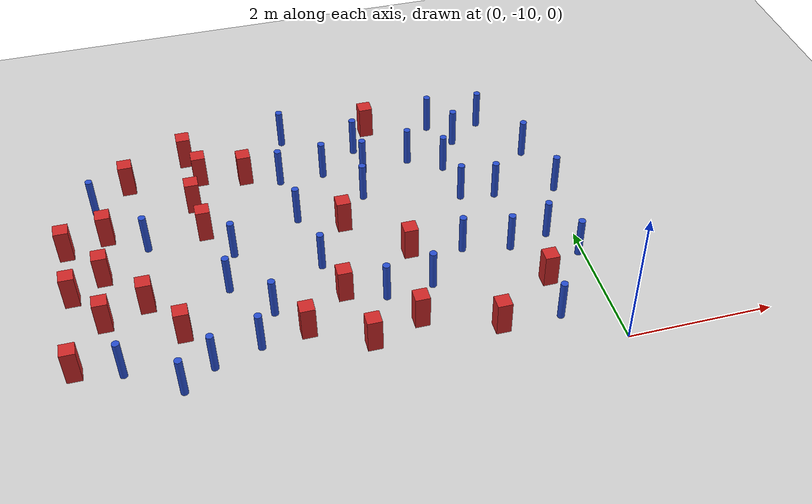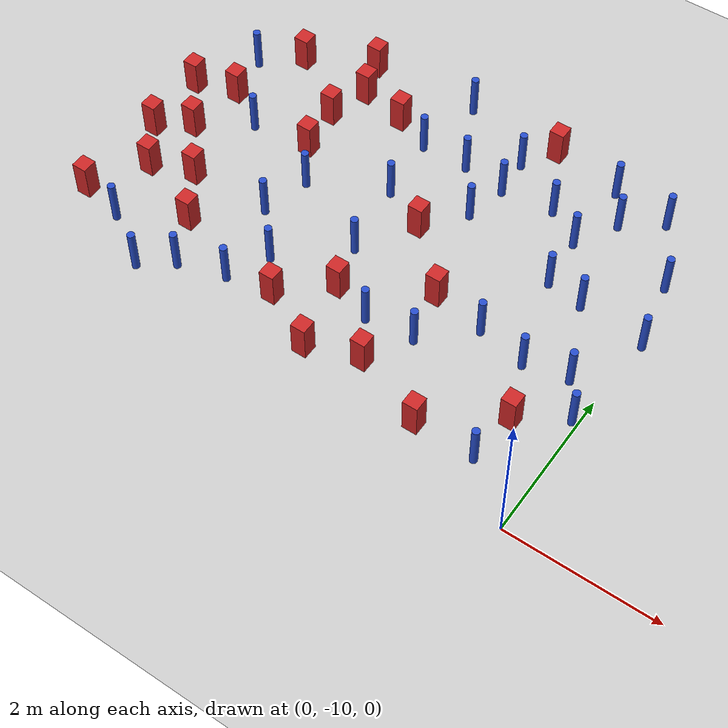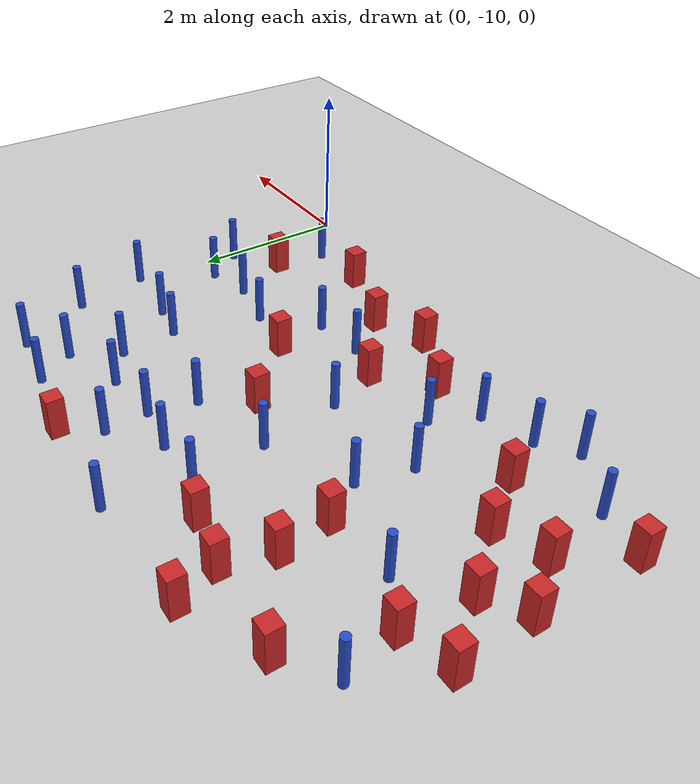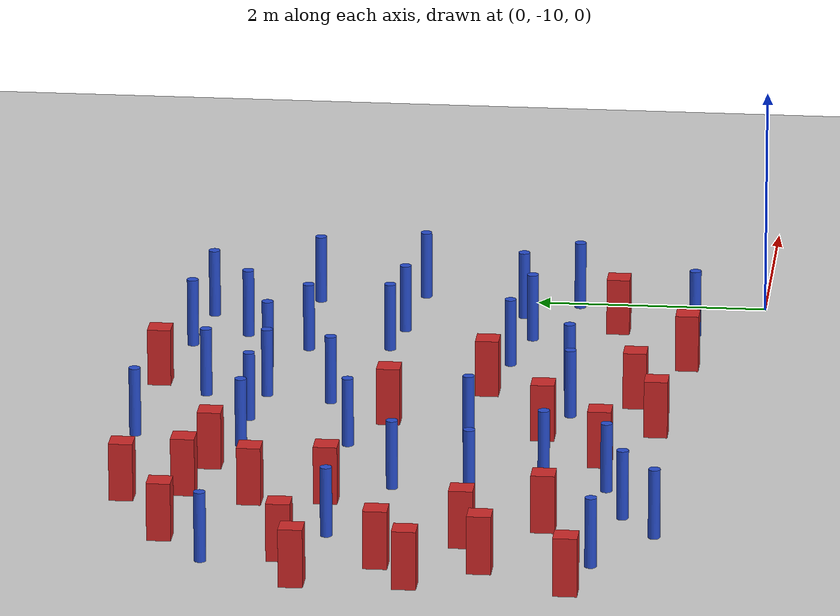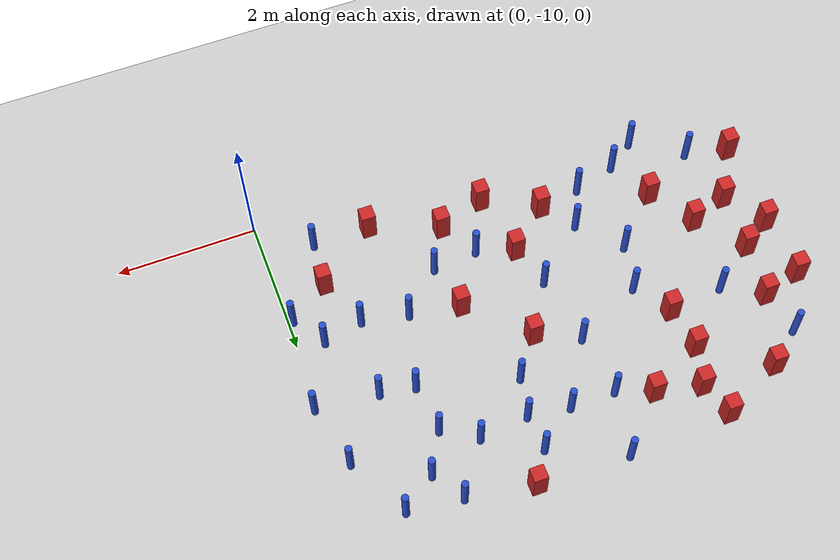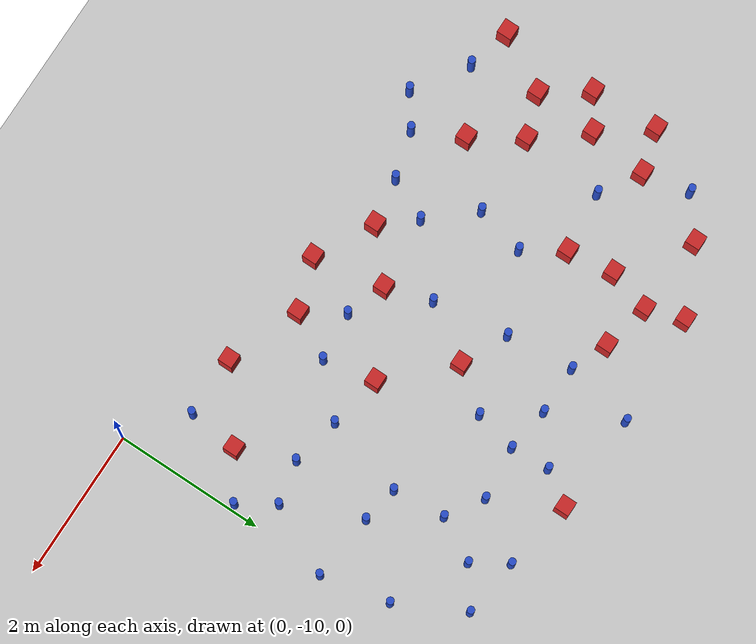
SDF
<sdf version="1.6">
 <world name="default">
  <model name="ground_plane">
   <static>1</static>
   <link name="link">
    <collision name="collision">
     <geometry><plane><normal>0 0 1</normal><size>100 100</size></plane></geometry>
     <surface><friction><ode><mu>100</mu><mu2>50</mu2></ode></friction></surface>
    </collision>
    <visual name="visual">
     <cast_shadows>0</cast_shadows>
     <geometry><plane><normal>0 0 1</normal><size>100 100</size></plane></geometry>
     <material>
      <ambient>1.0 1.0 1.0 1.0</ambient>
      <diffuse>0.8 0.8 0.8 1.0</diffuse>
      <specular>0.01 0.01 0.01 1.000000</specular>
     </material>
    </visual>
   </link>
  </model>
  <model name="square_post_obstacle0">
   <static>true</static>
   <pose>-5.92552398057 -7.88743212732 8.22691968438e-08 7.2212513382e-06 -7.54495500217e-07 2.29674213826e-05</pose>
   <link name="link">
    <pose>0 0 0.25 0 -0 0</pose>
    <inertial>
     <mass>100</mass>
     <inertia>
      <ixx>0.166667</ixx>
      <ixy>0</ixy>
      <ixz>0</ixz>
      <iyy>0.166667</iyy>
      <iyz>0</iyz>
      <izz>0.166667</izz>
     </inertia>
    </inertial>
    <collision name="collision"><geometry><box><size>.2 .2 .5</size></box></geometry></collision>
    <visual name="visual">
     <geometry><box><size>.2 .2 .5</size></box></geometry>
     <material>
      <script><name>Gazebo/Red</name><uri>file://media/materials/scripts/gazebo.material</uri></script>
     </material>
    </visual>
   </link>
  </model>
  <model name="pole_obstacle3">
   <static>true</static>
   <pose>-6.3174377324 -8.97854769486 2.88873142074e-08 -9.9053668967e-09 4.60219948993e-07 -1.20965994957e-07</pose>
   <link name="link">
    <pose>0 0 0.3 0 -0 0</pose>
    <inertial>
     <mass>1</mass>
     <inertia><ixx>0.145833</ixx><ixy>0</ixy><ixz>0</ixz><iyy>0.145833</iyy><iyz>0</iyz><izz>0.125</izz></inertia>
    </inertial>
    <collision name="collision">
     <geometry><cylinder><radius>0.05</radius><length>.6</length></cylinder></geometry>
    </collision>
    <visual name="visual">
     <geometry><cylinder><radius>0.05</radius><length>.6</length></cylinder></geometry>
     <material>
      <script><name>Gazebo/Blue</name><uri>file://media/materials/scripts/gazebo.material</uri></script>
     </material>
    </visual>
   </link>
  </model>
  <model name="square_post_obstacle5">
   <static>true</static>
   <pose>-2.51365523219 -9.04669653167 8.22691968438e-08 7.22125133819e-06 -7.54495500217e-07 2.29674213826e-05</pose>
   <link name="link">
    <pose>0 0 0.25 0 -0 0</pose>
    <inertial>
     <mass>100</mass>
     <inertia>
      <ixx>0.166667</ixx>
      <ixy>0</ixy>
      <ixz>0</ixz>
      <iyy>0.166667</iyy>
      <iyz>0</iyz>
      <izz>0.166667</izz>
     </inertia>
    </inertial>
    <collision name="collision"><geometry><box><size>.2 .2 .5</size></box></geometry></collision>
    <visual name="visual">
     <geometry><box><size>.2 .2 .5</size></box></geometry>
     <material>
      <script><name>Gazebo/Red</name><uri>file://media/materials/scripts/gazebo.material</uri></script>
     </material>
    </visual>
   </link>
  </model>
  <model name="pole_obstacle5">
   <static>true</static>
   <pose>-0.822284344405 -6.90274951284 2.88873142074e-08 -9.90536689661e-09 4.60219948993e-07 -1.20965994957e-07</pose>
   <link name="link">
    <pose>0 0 0.3 0 -0 0</pose>
    <inertial>
     <mass>1</mass>
     <inertia><ixx>0.145833</ixx><ixy>0</ixy><ixz>0</ixz><iyy>0.145833</iyy><iyz>0</iyz><izz>0.125</izz></inertia>
    </inertial>
    <collision name="collision">
     <geometry><cylinder><radius>0.05</radius><length>.6</length></cylinder></geometry>
    </collision>
    <visual name="visual">
     <geometry><cylinder><radius>0.05</radius><length>.6</length></cylinder></geometry>
     <material>
      <script><name>Gazebo/Blue</name><uri>file://media/materials/scripts/gazebo.material</uri></script>
     </material>
    </visual>
   </link>
  </model>
  <model name="pole_obstacle11">
   <static>true</static>
   <pose>-1.0749578244 -5.55144896337 2.88873142074e-08 -9.90536689852e-09 4.60219948989e-07 -1.2096599496e-07</pose>
   <link name="link">
    <pose>0 0 0.3 0 -0 0</pose>
    <inertial>
     <mass>1</mass>
     <inertia><ixx>0.145833</ixx><ixy>0</ixy><ixz>0</ixz><iyy>0.145833</iyy><iyz>0</iyz><izz>0.125</izz></inertia>
    </inertial>
    <collision name="collision">
     <geometry><cylinder><radius>0.05</radius><length>.6</length></cylinder></geometry>
    </collision>
    <visual name="visual">
     <geometry><cylinder><radius>0.05</radius><length>.6</length></cylinder></geometry>
     <material>
      <script><name>Gazebo/Blue</name><uri>file://media/materials/scripts/gazebo.material</uri></script>
     </material>
    </visual>
   </link>
  </model>
  <model name="square_post_obstacle21">
   <static>true</static>
   <pose>-6.36243128865 -6.4378647469 8.22691968438e-08 7.22125133819e-06 -7.54495500217e-07 2.29674213826e-05</pose>
   <link name="link">
    <pose>0 0 0.25 0 -0 0</pose>
    <inertial>
     <mass>100</mass>
     <inertia>
      <ixx>0.166667</ixx>
      <ixy>0</ixy>
      <ixz>0</ixz>
      <iyy>0.166667</iyy>
      <iyz>0</iyz>
      <izz>0.166667</izz>
     </inertia>
    </inertial>
    <collision name="collision"><geometry><box><size>.2 .2 .5</size></box></geometry></collision>
    <visual name="visual">
     <geometry><box><size>.2 .2 .5</size></box></geometry>
     <material>
      <script><name>Gazebo/Red</name><uri>file://media/materials/scripts/gazebo.material</uri></script>
     </material>
    </visual>
   </link>
  </model>
  <model name="square_post_obstacle26">
   <static>true</static>
   <pose>-6.90832912736 -8.82551121289 8.22691968438e-08 7.22125133819e-06 -7.54495500217e-07 2.29674213826e-05</pose>
   <link name="link">
    <pose>0 0 0.25 0 -0 0</pose>
    <inertial>
     <mass>100</mass>
     <inertia>
      <ixx>0.166667</ixx>
      <ixy>0</ixy>
      <ixz>0</ixz>
      <iyy>0.166667</iyy>
      <iyz>0</iyz>
      <izz>0.166667</izz>
     </inertia>
    </inertial>
    <collision name="collision"><geometry><box><size>.2 .2 .5</size></box></geometry></collision>
    <visual name="visual">
     <geometry><box><size>.2 .2 .5</size></box></geometry>
     <material>
      <script><name>Gazebo/Red</name><uri>file://media/materials/scripts/gazebo.material</uri></script>
     </material>
    </visual>
   </link>
  </model>
  <model name="square_post_obstacle27">
   <static>true</static>
   <pose>-5.10431131903 -6.04655854763 8.22691968438e-08 7.2212513382e-06 -7.54495500217e-07 2.29674213826e-05</pose>
   <link name="link">
    <pose>0 0 0.25 0 -0 0</pose>
    <inertial>
     <mass>100</mass>
     <inertia>
      <ixx>0.166667</ixx>
      <ixy>0</ixy>
      <ixz>0</ixz>
      <iyy>0.166667</iyy>
      <iyz>0</iyz>
      <izz>0.166667</izz>
     </inertia>
    </inertial>
    <collision name="collision"><geometry><box><size>.2 .2 .5</size></box></geometry></collision>
    <visual name="visual">
     <geometry><box><size>.2 .2 .5</size></box></geometry>
     <material>
      <script><name>Gazebo/Red</name><uri>file://media/materials/scripts/gazebo.material</uri></script>
     </material>
    </visual>
   </link>
  </model>
  <model name="pole_obstacle24">
   <static>true</static>
   <pose>-4.3291817906 -8.42116105895 2.88873142074e-08 -9.9053668967e-09 4.60219948993e-07 -1.20965994957e-07</pose>
   <link name="link">
    <pose>0 0 0.3 0 -0 0</pose>
    <inertial>
     <mass>1</mass>
     <inertia><ixx>0.145833</ixx><ixy>0</ixy><ixz>0</ixz><iyy>0.145833</iyy><iyz>0</iyz><izz>0.125</izz></inertia>
    </inertial>
    <collision name="collision">
     <geometry><cylinder><radius>0.05</radius><length>.6</length></cylinder></geometry>
    </collision>
    <visual name="visual">
     <geometry><cylinder><radius>0.05</radius><length>.6</length></cylinder></geometry>
     <material>
      <script><name>Gazebo/Blue</name><uri>file://media/materials/scripts/gazebo.material</uri></script>
     </material>
    </visual>
   </link>
  </model>
  <model name="pole_obstacle28">
   <static>true</static>
   <pose>-2.6010168327 -5.37028091994 2.88873142074e-08 -9.90536689859e-09 4.60219948989e-07 -1.20965994961e-07</pose>
   <link name="link">
    <pose>0 0 0.3 0 -0 0</pose>
    <inertial>
     <mass>1</mass>
     <inertia><ixx>0.145833</ixx><ixy>0</ixy><ixz>0</ixz><iyy>0.145833</iyy><iyz>0</iyz><izz>0.125</izz></inertia>
    </inertial>
    <collision name="collision">
     <geometry><cylinder><radius>0.05</radius><length>.6</length></cylinder></geometry>
    </collision>
    <visual name="visual">
     <geometry><cylinder><radius>0.05</radius><length>.6</length></cylinder></geometry>
     <material>
      <script><name>Gazebo/Blue</name><uri>file://media/materials/scripts/gazebo.material</uri></script>
     </material>
    </visual>
   </link>
  </model>
  <model name="pole_obstacle31">
   <static>true</static>
   <pose>-3.55672383519 -7.71805099888 2.88873142074e-08 -9.90536692062e-09 4.60219948937e-07 -1.20965994985e-07</pose>
   <link name="link">
    <pose>0 0 0.3 0 -0 0</pose>
    <inertial>
     <mass>1</mass>
     <inertia><ixx>0.145833</ixx><ixy>0</ixy><ixz>0</ixz><iyy>0.145833</iyy><iyz>0</iyz><izz>0.125</izz></inertia>
    </inertial>
    <collision name="collision">
     <geometry><cylinder><radius>0.05</radius><length>.6</length></cylinder></geometry>
    </collision>
    <visual name="visual">
     <geometry><cylinder><radius>0.05</radius><length>.6</length></cylinder></geometry>
     <material>
      <script><name>Gazebo/Blue</name><uri>file://media/materials/scripts/gazebo.material</uri></script>
     </material>
    </visual>
   </link>
  </model>
  <model name="pole_obstacle36">
   <static>true</static>
   <pose>-4.68713986833 -7.18636808488 2.88873142074e-08 -9.90536690842e-09 4.60219948965e-07 -1.20965994976e-07</pose>
   <link name="link">
    <pose>0 0 0.3 0 -0 0</pose>
    <inertial>
     <mass>1</mass>
     <inertia><ixx>0.145833</ixx><ixy>0</ixy><ixz>0</ixz><iyy>0.145833</iyy><iyz>0</iyz><izz>0.125</izz></inertia>
    </inertial>
    <collision name="collision">
     <geometry><cylinder><radius>0.05</radius><length>.6</length></cylinder></geometry>
    </collision>
    <visual name="visual">
     <geometry><cylinder><radius>0.05</radius><length>.6</length></cylinder></geometry>
     <material>
      <script><name>Gazebo/Blue</name><uri>file://media/materials/scripts/gazebo.material</uri></script>
     </material>
    </visual>
   </link>
  </model>
  <model name="pole_obstacle39">
   <static>true</static>
   <pose>-1.36149028149 -5.09908011771 2.88873142074e-08 -9.90536689852e-09 4.60219948989e-07 -1.2096599496e-07</pose>
   <link name="link">
    <pose>0 0 0.3 0 -0 0</pose>
    <inertial>
     <mass>1</mass>
     <inertia><ixx>0.145833</ixx><ixy>0</ixy><ixz>0</ixz><iyy>0.145833</iyy><iyz>0</iyz><izz>0.125</izz></inertia>
    </inertial>
    <collision name="collision">
     <geometry><cylinder><radius>0.05</radius><length>.6</length></cylinder></geometry>
    </collision>
    <visual name="visual">
     <geometry><cylinder><radius>0.05</radius><length>.6</length></cylinder></geometry>
     <material>
      <script><name>Gazebo/Blue</name><uri>file://media/materials/scripts/gazebo.material</uri></script>
     </material>
    </visual>
   </link>
  </model>
  <model name="pole_obstacle49">
   <static>true</static>
   <pose>-5.61631801069 -9.44229150603 2.88873142074e-08 -9.9053668967e-09 4.60219948993e-07 -1.20965994957e-07</pose>
   <link name="link">
    <pose>0 0 0.3 0 -0 0</pose>
    <inertial>
     <mass>1</mass>
     <inertia><ixx>0.145833</ixx><ixy>0</ixy><ixz>0</ixz><iyy>0.145833</iyy><iyz>0</iyz><izz>0.125</izz></inertia>
    </inertial>
    <collision name="collision">
     <geometry><cylinder><radius>0.05</radius><length>.6</length></cylinder></geometry>
    </collision>
    <visual name="visual">
     <geometry><cylinder><radius>0.05</radius><length>.6</length></cylinder></geometry>
     <material>
      <script><name>Gazebo/Blue</name><uri>file://media/materials/scripts/gazebo.material</uri></script>
     </material>
    </visual>
   </link>
  </model>
  <model name="square_post_obstacle55">
   <static>true</static>
   <pose>-5.10846657868 -4.9810043561 8.22691968438e-08 7.2212513382e-06 -7.54495500217e-07 2.29674213826e-05</pose>
   <link name="link">
    <pose>0 0 0.25 0 -0 0</pose>
    <inertial>
     <mass>100</mass>
     <inertia>
      <ixx>0.166667</ixx>
      <ixy>0</ixy>
      <ixz>0</ixz>
      <iyy>0.166667</iyy>
      <iyz>0</iyz>
      <izz>0.166667</izz>
     </inertia>
    </inertial>
    <collision name="collision"><geometry><box><size>.2 .2 .5</size></box></geometry></collision>
    <visual name="visual">
     <geometry><box><size>.2 .2 .5</size></box></geometry>
     <material>
      <script><name>Gazebo/Red</name><uri>file://media/materials/scripts/gazebo.material</uri></script>
     </material>
    </visual>
   </link>
  </model>
  <model name="square_post_obstacle59">
   <static>true</static>
   <pose>-4.29820083624 -5.61743332779 8.22691968438e-08 7.22125133819e-06 -7.54495500217e-07 2.29674213826e-05</pose>
   <link name="link">
    <pose>0 0 0.25 0 -0 0</pose>
    <inertial>
     <mass>100</mass>
     <inertia>
      <ixx>0.166667</ixx>
      <ixy>0</ixy>
      <ixz>0</ixz>
      <iyy>0.166667</iyy>
      <iyz>0</iyz>
      <izz>0.166667</izz>
     </inertia>
    </inertial>
    <collision name="collision"><geometry><box><size>.2 .2 .5</size></box></geometry></collision>
    <visual name="visual">
     <geometry><box><size>.2 .2 .5</size></box></geometry>
     <material>
      <script><name>Gazebo/Red</name><uri>file://media/materials/scripts/gazebo.material</uri></script>
     </material>
    </visual>
   </link>
  </model>
  <model name="square_post_obstacle61">
   <static>true</static>
   <pose>-2.31685347991 -4.93831984632 8.22691968438e-08 7.2212513382e-06 -7.54495500217e-07 2.29674213826e-05</pose>
   <link name="link">
    <pose>0 0 0.25 0 -0 0</pose>
    <inertial>
     <mass>100</mass>
     <inertia>
      <ixx>0.166667</ixx>
      <ixy>0</ixy>
      <ixz>0</ixz>
      <iyy>0.166667</iyy>
      <iyz>0</iyz>
      <izz>0.166667</izz>
     </inertia>
    </inertial>
    <collision name="collision"><geometry><box><size>.2 .2 .5</size></box></geometry></collision>
    <visual name="visual">
     <geometry><box><size>.2 .2 .5</size></box></geometry>
     <material>
      <script><name>Gazebo/Red</name><uri>file://media/materials/scripts/gazebo.material</uri></script>
     </material>
    </visual>
   </link>
  </model>
  <model name="pole_obstacle58">
   <static>true</static>
   <pose>-0.950561262732 -8.02967429832 2.88873142074e-08 -9.90536691475e-09 4.6021994895e-07 -1.20965994986e-07</pose>
   <link name="link">
    <pose>0 0 0.3 0 -0 0</pose>
    <inertial>
     <mass>1</mass>
     <inertia><ixx>0.145833</ixx><ixy>0</ixy><ixz>0</ixz><iyy>0.145833</iyy><iyz>0</iyz><izz>0.125</izz></inertia>
    </inertial>
    <collision name="collision">
     <geometry><cylinder><radius>0.05</radius><length>.6</length></cylinder></geometry>
    </collision>
    <visual name="visual">
     <geometry><cylinder><radius>0.05</radius><length>.6</length></cylinder></geometry>
     <material>
      <script><name>Gazebo/Blue</name><uri>file://media/materials/scripts/gazebo.material</uri></script>
     </material>
    </visual>
   </link>
  </model>
  <model name="pole_obstacle63">
   <static>true</static>
   <pose>-4.58594104187 -8.96743901282 2.88873142074e-08 -9.9053668967e-09 4.60219948993e-07 -1.20965994957e-07</pose>
   <link name="link">
    <pose>0 0 0.3 0 -0 0</pose>
    <inertial>
     <mass>1</mass>
     <inertia><ixx>0.145833</ixx><ixy>0</ixy><ixz>0</ixz><iyy>0.145833</iyy><iyz>0</iyz><izz>0.125</izz></inertia>
    </inertial>
    <collision name="collision">
     <geometry><cylinder><radius>0.05</radius><length>.6</length></cylinder></geometry>
    </collision>
    <visual name="visual">
     <geometry><cylinder><radius>0.05</radius><length>.6</length></cylinder></geometry>
     <material>
      <script><name>Gazebo/Blue</name><uri>file://media/materials/scripts/gazebo.material</uri></script>
     </material>
    </visual>
   </link>
  </model>
  <model name="square_post_obstacle71">
   <static>true</static>
   <pose>-4.94352637798 -5.47606829243 8.22691968438e-08 7.2212513382e-06 -7.54495500217e-07 2.29674213826e-05</pose>
   <link name="link">
    <pose>0 0 0.25 0 -0 0</pose>
    <inertial>
     <mass>100</mass>
     <inertia>
      <ixx>0.166667</ixx>
      <ixy>0</ixy>
      <ixz>0</ixz>
      <iyy>0.166667</iyy>
      <iyz>0</iyz>
      <izz>0.166667</izz>
     </inertia>
    </inertial>
    <collision name="collision"><geometry><box><size>.2 .2 .5</size></box></geometry></collision>
    <visual name="visual">
     <geometry><box><size>.2 .2 .5</size></box></geometry>
     <material>
      <script><name>Gazebo/Red</name><uri>file://media/materials/scripts/gazebo.material</uri></script>
     </material>
    </visual>
   </link>
  </model>
  <model name="pole_obstacle68">
   <static>true</static>
   <pose>-5.82792152755 -6.76319458997 2.88873142074e-08 -9.90536690842e-09 4.60219948965e-07 -1.20965994976e-07</pose>
   <link name="link">
    <pose>0 0 0.3 0 -0 0</pose>
    <inertial>
     <mass>1</mass>
     <inertia><ixx>0.145833</ixx><ixy>0</ixy><ixz>0</ixz><iyy>0.145833</iyy><iyz>0</iyz><izz>0.125</izz></inertia>
    </inertial>
    <collision name="collision">
     <geometry><cylinder><radius>0.05</radius><length>.6</length></cylinder></geometry>
    </collision>
    <visual name="visual">
     <geometry><cylinder><radius>0.05</radius><length>.6</length></cylinder></geometry>
     <material>
      <script><name>Gazebo/Blue</name><uri>file://media/materials/scripts/gazebo.material</uri></script>
     </material>
    </visual>
   </link>
  </model>
  <model name="square_post_obstacle72">
   <static>true</static>
   <pose>-5.99002505777 -5.41087705524 8.22691968438e-08 7.22125133819e-06 -7.54495500217e-07 2.29674213826e-05</pose>
   <link name="link">
    <pose>0 0 0.25 0 -0 0</pose>
    <inertial>
     <mass>100</mass>
     <inertia>
      <ixx>0.166667</ixx>
      <ixy>0</ixy>
      <ixz>0</ixz>
      <iyy>0.166667</iyy>
      <iyz>0</iyz>
      <izz>0.166667</izz>
     </inertia>
    </inertial>
    <collision name="collision"><geometry><box><size>.2 .2 .5</size></box></geometry></collision>
    <visual name="visual">
     <geometry><box><size>.2 .2 .5</size></box></geometry>
     <material>
      <script><name>Gazebo/Red</name><uri>file://media/materials/scripts/gazebo.material</uri></script>
     </material>
    </visual>
   </link>
  </model>
  <model name="pole_obstacle74">
   <static>true</static>
   <pose>-3.71037359759 -6.70965588943 2.88873142074e-08 -9.90536692062e-09 4.60219948937e-07 -1.20965994985e-07</pose>
   <link name="link">
    <pose>0 0 0.3 0 -0 0</pose>
    <inertial>
     <mass>1</mass>
     <inertia><ixx>0.145833</ixx><ixy>0</ixy><ixz>0</ixz><iyy>0.145833</iyy><iyz>0</iyz><izz>0.125</izz></inertia>
    </inertial>
    <collision name="collision">
     <geometry><cylinder><radius>0.05</radius><length>.6</length></cylinder></geometry>
    </collision>
    <visual name="visual">
     <geometry><cylinder><radius>0.05</radius><length>.6</length></cylinder></geometry>
     <material>
      <script><name>Gazebo/Blue</name><uri>file://media/materials/scripts/gazebo.material</uri></script>
     </material>
    </visual>
   </link>
  </model>
  <model name="pole_obstacle81">
   <static>true</static>
   <pose>-3.16174402639 -5.80746818947 2.88873142074e-08 -9.90536689859e-09 4.60219948989e-07 -1.20965994961e-07</pose>
   <link name="link">
    <pose>0 0 0.3 0 -0 0</pose>
    <inertial>
     <mass>1</mass>
     <inertia><ixx>0.145833</ixx><ixy>0</ixy><ixz>0</ixz><iyy>0.145833</iyy><iyz>0</iyz><izz>0.125</izz></inertia>
    </inertial>
    <collision name="collision">
     <geometry><cylinder><radius>0.05</radius><length>.6</length></cylinder></geometry>
    </collision>
    <visual name="visual">
     <geometry><cylinder><radius>0.05</radius><length>.6</length></cylinder></geometry>
     <material>
      <script><name>Gazebo/Blue</name><uri>file://media/materials/scripts/gazebo.material</uri></script>
     </material>
    </visual>
   </link>
  </model>
  <model name="pole_obstacle94">
   <static>true</static>
   <pose>-2.56623508275 -5.8915210836 2.88873142074e-08 -9.90536689859e-09 4.60219948989e-07 -1.20965994961e-07</pose>
   <link name="link">
    <pose>0 0 0.3 0 -0 0</pose>
    <inertial>
     <mass>1</mass>
     <inertia><ixx>0.145833</ixx><ixy>0</ixy><ixz>0</ixz><iyy>0.145833</iyy><iyz>0</iyz><izz>0.125</izz></inertia>
    </inertial>
    <collision name="collision">
     <geometry><cylinder><radius>0.05</radius><length>.6</length></cylinder></geometry>
    </collision>
    <visual name="visual">
     <geometry><cylinder><radius>0.05</radius><length>.6</length></cylinder></geometry>
     <material>
      <script><name>Gazebo/Blue</name><uri>file://media/materials/scripts/gazebo.material</uri></script>
     </material>
    </visual>
   </link>
  </model>
  <model name="pole_obstacle103">
   <static>true</static>
   <pose>-5.20546935731 -9.14963666136 2.88873142074e-08 -9.9053668967e-09 4.60219948993e-07 -1.20965994957e-07</pose>
   <link name="link">
    <pose>0 0 0.3 0 -0 0</pose>
    <inertial>
     <mass>1</mass>
     <inertia><ixx>0.145833</ixx><ixy>0</ixy><ixz>0</ixz><iyy>0.145833</iyy><iyz>0</iyz><izz>0.125</izz></inertia>
    </inertial>
    <collision name="collision">
     <geometry><cylinder><radius>0.05</radius><length>.6</length></cylinder></geometry>
    </collision>
    <visual name="visual">
     <geometry><cylinder><radius>0.05</radius><length>.6</length></cylinder></geometry>
     <material>
      <script><name>Gazebo/Blue</name><uri>file://media/materials/scripts/gazebo.material</uri></script>
     </material>
    </visual>
   </link>
  </model>
  <model name="pole_obstacle106">
   <static>true</static>
   <pose>-0.126106377214 -6.0822471708 2.88873142074e-08 -9.90536689816e-09 4.6021994899e-07 -1.20965994961e-07</pose>
   <link name="link">
    <pose>0 0 0.3 0 -0 0</pose>
    <inertial>
     <mass>1</mass>
     <inertia><ixx>0.145833</ixx><ixy>0</ixy><ixz>0</ixz><iyy>0.145833</iyy><iyz>0</iyz><izz>0.125</izz></inertia>
    </inertial>
    <collision name="collision">
     <geometry><cylinder><radius>0.05</radius><length>.6</length></cylinder></geometry>
    </collision>
    <visual name="visual">
     <geometry><cylinder><radius>0.05</radius><length>.6</length></cylinder></geometry>
     <material>
      <script><name>Gazebo/Blue</name><uri>file://media/materials/scripts/gazebo.material</uri></script>
     </material>
    </visual>
   </link>
  </model>
  <model name="pole_obstacle114">
   <static>true</static>
   <pose>-0.5817203055 -5.19342319991 2.88873142074e-08 -9.90536689661e-09 4.60219948993e-07 -1.20965994957e-07</pose>
   <link name="link">
    <pose>0 0 0.3 0 -0 0</pose>
    <inertial>
     <mass>1</mass>
     <inertia><ixx>0.145833</ixx><ixy>0</ixy><ixz>0</ixz><iyy>0.145833</iyy><iyz>0</iyz><izz>0.125</izz></inertia>
    </inertial>
    <collision name="collision">
     <geometry><cylinder><radius>0.05</radius><length>.6</length></cylinder></geometry>
    </collision>
    <visual name="visual">
     <geometry><cylinder><radius>0.05</radius><length>.6</length></cylinder></geometry>
     <material>
      <script><name>Gazebo/Blue</name><uri>file://media/materials/scripts/gazebo.material</uri></script>
     </material>
    </visual>
   </link>
  </model>
  <model name="square_post_obstacle106">
   <static>true</static>
   <pose>-6.45246209563 -7.23940452607 8.22691968438e-08 7.2212513382e-06 -7.54495500217e-07 2.29674213826e-05</pose>
   <link name="link">
    <pose>0 0 0.25 0 -0 0</pose>
    <inertial>
     <mass>100</mass>
     <inertia>
      <ixx>0.166667</ixx>
      <ixy>0</ixy>
      <ixz>0</ixz>
      <iyy>0.166667</iyy>
      <iyz>0</iyz>
      <izz>0.166667</izz>
     </inertia>
    </inertial>
    <collision name="collision"><geometry><box><size>.2 .2 .5</size></box></geometry></collision>
    <visual name="visual">
     <geometry><box><size>.2 .2 .5</size></box></geometry>
     <material>
      <script><name>Gazebo/Red</name><uri>file://media/materials/scripts/gazebo.material</uri></script>
     </material>
    </visual>
   </link>
  </model>
  <model name="pole_obstacle123">
   <static>true</static>
   <pose>-1.60951800433 -7.89428067144 2.88873142074e-08 -9.90536689852e-09 4.60219948989e-07 -1.2096599496e-07</pose>
   <link name="link">
    <pose>0 0 0.3 0 -0 0</pose>
    <inertial>
     <mass>1</mass>
     <inertia><ixx>0.145833</ixx><ixy>0</ixy><ixz>0</ixz><iyy>0.145833</iyy><iyz>0</iyz><izz>0.125</izz></inertia>
    </inertial>
    <collision name="collision">
     <geometry><cylinder><radius>0.05</radius><length>.6</length></cylinder></geometry>
    </collision>
    <visual name="visual">
     <geometry><cylinder><radius>0.05</radius><length>.6</length></cylinder></geometry>
     <material>
      <script><name>Gazebo/Blue</name><uri>file://media/materials/scripts/gazebo.material</uri></script>
     </material>
    </visual>
   </link>
  </model>
  <model name="pole_obstacle129">
   <static>true</static>
   <pose>-3.80692502502 -5.81462385995 2.88873142074e-08 -9.90536689859e-09 4.60219948989e-07 -1.20965994961e-07</pose>
   <link name="link">
    <pose>0 0 0.3 0 -0 0</pose>
    <inertial>
     <mass>1</mass>
     <inertia><ixx>0.145833</ixx><ixy>0</ixy><ixz>0</ixz><iyy>0.145833</iyy><iyz>0</iyz><izz>0.125</izz></inertia>
    </inertial>
    <collision name="collision">
     <geometry><cylinder><radius>0.05</radius><length>.6</length></cylinder></geometry>
    </collision>
    <visual name="visual">
     <geometry><cylinder><radius>0.05</radius><length>.6</length></cylinder></geometry>
     <material>
      <script><name>Gazebo/Blue</name><uri>file://media/materials/scripts/gazebo.material</uri></script>
     </material>
    </visual>
   </link>
  </model>
  <model name="pole_obstacle132">
   <static>true</static>
   <pose>-0.379382841037 -7.9035648842 2.88873142074e-08 -9.90536689683e-09 4.60219948993e-07 -1.20965994957e-07</pose>
   <link name="link">
    <pose>0 0 0.3 0 -0 0</pose>
    <inertial>
     <mass>1</mass>
     <inertia><ixx>0.145833</ixx><ixy>0</ixy><ixz>0</ixz><iyy>0.145833</iyy><iyz>0</iyz><izz>0.125</izz></inertia>
    </inertial>
    <collision name="collision">
     <geometry><cylinder><radius>0.05</radius><length>.6</length></cylinder></geometry>
    </collision>
    <visual name="visual">
     <geometry><cylinder><radius>0.05</radius><length>.6</length></cylinder></geometry>
     <material>
      <script><name>Gazebo/Blue</name><uri>file://media/materials/scripts/gazebo.material</uri></script>
     </material>
    </visual>
   </link>
  </model>
  <model name="pole_obstacle137">
   <static>true</static>
   <pose>-0.722476402782 -9.43114545636 2.88873142074e-08 -9.90536690779e-09 4.60219948967e-07 -1.20965994975e-07</pose>
   <link name="link">
    <pose>0 0 0.3 0 -0 0</pose>
    <inertial>
     <mass>1</mass>
     <inertia><ixx>0.145833</ixx><ixy>0</ixy><ixz>0</ixz><iyy>0.145833</iyy><iyz>0</iyz><izz>0.125</izz></inertia>
    </inertial>
    <collision name="collision">
     <geometry><cylinder><radius>0.05</radius><length>.6</length></cylinder></geometry>
    </collision>
    <visual name="visual">
     <geometry><cylinder><radius>0.05</radius><length>.6</length></cylinder></geometry>
     <material>
      <script><name>Gazebo/Blue</name><uri>file://media/materials/scripts/gazebo.material</uri></script>
     </material>
    </visual>
   </link>
  </model>
  <model name="square_post_obstacle119">
   <static>true</static>
   <pose>-3.09906935374 -6.99615195328 8.22691968438e-08 7.22125133819e-06 -7.54495500217e-07 2.29674213826e-05</pose>
   <link name="link">
    <pose>0 0 0.25 0 -0 0</pose>
    <inertial>
     <mass>100</mass>
     <inertia>
      <ixx>0.166667</ixx>
      <ixy>0</ixy>
      <ixz>0</ixz>
      <iyy>0.166667</iyy>
      <iyz>0</iyz>
      <izz>0.166667</izz>
     </inertia>
    </inertial>
    <collision name="collision"><geometry><box><size>.2 .2 .5</size></box></geometry></collision>
    <visual name="visual">
     <geometry><box><size>.2 .2 .5</size></box></geometry>
     <material>
      <script><name>Gazebo/Red</name><uri>file://media/materials/scripts/gazebo.material</uri></script>
     </material>
    </visual>
   </link>
  </model>
  <model name="square_post_obstacle125">
   <static>true</static>
   <pose>-6.88330757564 -7.51877244217 8.22691968438e-08 7.22125133819e-06 -7.54495500217e-07 2.29674213826e-05</pose>
   <link name="link">
    <pose>0 0 0.25 0 -0 0</pose>
    <inertial>
     <mass>100</mass>
     <inertia>
      <ixx>0.166667</ixx>
      <ixy>0</ixy>
      <ixz>0</ixz>
      <iyy>0.166667</iyy>
      <iyz>0</iyz>
      <izz>0.166667</izz>
     </inertia>
    </inertial>
    <collision name="collision"><geometry><box><size>.2 .2 .5</size></box></geometry></collision>
    <visual name="visual">
     <geometry><box><size>.2 .2 .5</size></box></geometry>
     <material>
      <script><name>Gazebo/Red</name><uri>file://media/materials/scripts/gazebo.material</uri></script>
     </material>
    </visual>
   </link>
  </model>
  <model name="square_post_obstacle130">
   <static>true</static>
   <pose>-1.53521341059 -9.42265043222 8.22691968438e-08 7.22125133819e-06 -7.54495500217e-07 2.29674213826e-05</pose>
   <link name="link">
    <pose>0 0 0.25 0 -0 0</pose>
    <inertial>
     <mass>100</mass>
     <inertia>
      <ixx>0.166667</ixx>
      <ixy>0</ixy>
      <ixz>0</ixz>
      <iyy>0.166667</iyy>
      <iyz>0</iyz>
      <izz>0.166667</izz>
     </inertia>
    </inertial>
    <collision name="collision"><geometry><box><size>.2 .2 .5</size></box></geometry></collision>
    <visual name="visual">
     <geometry><box><size>.2 .2 .5</size></box></geometry>
     <material>
      <script><name>Gazebo/Red</name><uri>file://media/materials/scripts/gazebo.material</uri></script>
     </material>
    </visual>
   </link>
  </model>
  <model name="square_post_obstacle134">
   <static>true</static>
   <pose>-3.36925121959 -8.33290280021 8.22691968438e-08 7.22125133819e-06 -7.54495500217e-07 2.29674213826e-05</pose>
   <link name="link">
    <pose>0 0 0.25 0 -0 0</pose>
    <inertial>
     <mass>100</mass>
     <inertia>
      <ixx>0.166667</ixx>
      <ixy>0</ixy>
      <ixz>0</ixz>
      <iyy>0.166667</iyy>
      <iyz>0</iyz>
      <izz>0.166667</izz>
     </inertia>
    </inertial>
    <collision name="collision"><geometry><box><size>.2 .2 .5</size></box></geometry></collision>
    <visual name="visual">
     <geometry><box><size>.2 .2 .5</size></box></geometry>
     <material>
      <script><name>Gazebo/Red</name><uri>file://media/materials/scripts/gazebo.material</uri></script>
     </material>
    </visual>
   </link>
  </model>
  <model name="square_post_obstacle143">
   <static>true</static>
   <pose>-3.19590950568 -9.2777629379 8.22691968438e-08 7.22125133819e-06 -7.54495500217e-07 2.29674213826e-05</pose>
   <link name="link">
    <pose>0 0 0.25 0 -0 0</pose>
    <inertial>
     <mass>100</mass>
     <inertia>
      <ixx>0.166667</ixx>
      <ixy>0</ixy>
      <ixz>0</ixz>
      <iyy>0.166667</iyy>
      <iyz>0</iyz>
      <izz>0.166667</izz>
     </inertia>
    </inertial>
    <collision name="collision"><geometry><box><size>.2 .2 .5</size></box></geometry></collision>
    <visual name="visual">
     <geometry><box><size>.2 .2 .5</size></box></geometry>
     <material>
      <script><name>Gazebo/Red</name><uri>file://media/materials/scripts/gazebo.material</uri></script>
     </material>
    </visual>
   </link>
  </model>
  <model name="pole_obstacle155">
   <static>true</static>
   <pose>-1.31583141606 -6.81894416591 2.88873142074e-08 -9.90536689852e-09 4.60219948989e-07 -1.2096599496e-07</pose>
   <link name="link">
    <pose>0 0 0.3 0 -0 0</pose>
    <inertial>
     <mass>1</mass>
     <inertia><ixx>0.145833</ixx><ixy>0</ixy><ixz>0</ixz><iyy>0.145833</iyy><iyz>0</iyz><izz>0.125</izz></inertia>
    </inertial>
    <collision name="collision">
     <geometry><cylinder><radius>0.05</radius><length>.6</length></cylinder></geometry>
    </collision>
    <visual name="visual">
     <geometry><cylinder><radius>0.05</radius><length>.6</length></cylinder></geometry>
     <material>
      <script><name>Gazebo/Blue</name><uri>file://media/materials/scripts/gazebo.material</uri></script>
     </material>
    </visual>
   </link>
  </model>
  <model name="square_post_obstacle145">
   <static>true</static>
   <pose>-5.51348551233 -8.52410177085 8.22691968438e-08 7.22125133819e-06 -7.54495500217e-07 2.29674213826e-05</pose>
   <link name="link">
    <pose>0 0 0.25 0 -0 0</pose>
    <inertial>
     <mass>100</mass>
     <inertia>
      <ixx>0.166667</ixx>
      <ixy>0</ixy>
      <ixz>0</ixz>
      <iyy>0.166667</iyy>
      <iyz>0</iyz>
      <izz>0.166667</izz>
     </inertia>
    </inertial>
    <collision name="collision"><geometry><box><size>.2 .2 .5</size></box></geometry></collision>
    <visual name="visual">
     <geometry><box><size>.2 .2 .5</size></box></geometry>
     <material>
      <script><name>Gazebo/Red</name><uri>file://media/materials/scripts/gazebo.material</uri></script>
     </material>
    </visual>
   </link>
  </model>
  <model name="square_post_obstacle146">
   <static>true</static>
   <pose>-5.01967213277 -6.67454335742 8.22691968438e-08 7.22125133819e-06 -7.54495500217e-07 2.29674213826e-05</pose>
   <link name="link">
    <pose>0 0 0.25 0 -0 0</pose>
    <inertial>
     <mass>100</mass>
     <inertia>
      <ixx>0.166667</ixx>
      <ixy>0</ixy>
      <ixz>0</ixz>
      <iyy>0.166667</iyy>
      <iyz>0</iyz>
      <izz>0.166667</izz>
     </inertia>
    </inertial>
    <collision name="collision"><geometry><box><size>.2 .2 .5</size></box></geometry></collision>
    <visual name="visual">
     <geometry><box><size>.2 .2 .5</size></box></geometry>
     <material>
      <script><name>Gazebo/Red</name><uri>file://media/materials/scripts/gazebo.material</uri></script>
     </material>
    </visual>
   </link>
  </model>
  <model name="square_post_obstacle149">
   <static>true</static>
   <pose>-0.656281105827 -8.75834727877 8.22691968438e-08 7.22125133819e-06 -7.54495500217e-07 2.29674213826e-05</pose>
   <link name="link">
    <pose>0 0 0.25 0 -0 0</pose>
    <inertial>
     <mass>100</mass>
     <inertia>
      <ixx>0.166667</ixx>
      <ixy>0</ixy>
      <ixz>0</ixz>
      <iyy>0.166667</iyy>
      <iyz>0</iyz>
      <izz>0.166667</izz>
     </inertia>
    </inertial>
    <collision name="collision"><geometry><box><size>.2 .2 .5</size></box></geometry></collision>
    <visual name="visual">
     <geometry><box><size>.2 .2 .5</size></box></geometry>
     <material>
      <script><name>Gazebo/Red</name><uri>file://media/materials/scripts/gazebo.material</uri></script>
     </material>
    </visual>
   </link>
  </model>
  <model name="pole_obstacle165">
   <static>true</static>
   <pose>-2.18874327467 -8.45605923765 2.88873142074e-08 -9.90536692318e-09 4.6021994893e-07 -1.20965994988e-07</pose>
   <link name="link">
    <pose>0 0 0.3 0 -0 0</pose>
    <inertial>
     <mass>1</mass>
     <inertia><ixx>0.145833</ixx><ixy>0</ixy><ixz>0</ixz><iyy>0.145833</iyy><iyz>0</iyz><izz>0.125</izz></inertia>
    </inertial>
    <collision name="collision">
     <geometry><cylinder><radius>0.05</radius><length>.6</length></cylinder></geometry>
    </collision>
    <visual name="visual">
     <geometry><cylinder><radius>0.05</radius><length>.6</length></cylinder></geometry>
     <material>
      <script><name>Gazebo/Blue</name><uri>file://media/materials/scripts/gazebo.material</uri></script>
     </material>
    </visual>
   </link>
  </model>
  <model name="pole_obstacle171">
   <static>true</static>
   <pose>-1.8609507058 -5.81321284456 2.88873142074e-08 -9.90536689852e-09 4.60219948989e-07 -1.2096599496e-07</pose>
   <link name="link">
    <pose>0 0 0.3 0 -0 0</pose>
    <inertial>
     <mass>1</mass>
     <inertia><ixx>0.145833</ixx><ixy>0</ixy><ixz>0</ixz><iyy>0.145833</iyy><iyz>0</iyz><izz>0.125</izz></inertia>
    </inertial>
    <collision name="collision">
     <geometry><cylinder><radius>0.05</radius><length>.6</length></cylinder></geometry>
    </collision>
    <visual name="visual">
     <geometry><cylinder><radius>0.05</radius><length>.6</length></cylinder></geometry>
     <material>
      <script><name>Gazebo/Blue</name><uri>file://media/materials/scripts/gazebo.material</uri></script>
     </material>
    </visual>
   </link>
  </model>
  <model name="pole_obstacle175">
   <static>true</static>
   <pose>-0.0731207932675 -8.37219777472 2.88873142074e-08 -9.90536690801e-09 4.60219948966e-07 -1.20965994976e-07</pose>
   <link name="link">
    <pose>0 0 0.3 0 -0 0</pose>
    <inertial>
     <mass>1</mass>
     <inertia><ixx>0.145833</ixx><ixy>0</ixy><ixz>0</ixz><iyy>0.145833</iyy><iyz>0</iyz><izz>0.125</izz></inertia>
    </inertial>
    <collision name="collision">
     <geometry><cylinder><radius>0.05</radius><length>.6</length></cylinder></geometry>
    </collision>
    <visual name="visual">
     <geometry><cylinder><radius>0.05</radius><length>.6</length></cylinder></geometry>
     <material>
      <script><name>Gazebo/Blue</name><uri>file://media/materials/scripts/gazebo.material</uri></script>
     </material>
    </visual>
   </link>
  </model>
  <model name="square_post_obstacle165">
   <static>true</static>
   <pose>-3.96498877475 -8.86186977168 8.22691968438e-08 7.22125133819e-06 -7.54495500217e-07 2.29674213826e-05</pose>
   <link name="link">
    <pose>0 0 0.25 0 -0 0</pose>
    <inertial>
     <mass>100</mass>
     <inertia>
      <ixx>0.166667</ixx>
      <ixy>0</ixy>
      <ixz>0</ixz>
      <iyy>0.166667</iyy>
      <iyz>0</iyz>
      <izz>0.166667</izz>
     </inertia>
    </inertial>
    <collision name="collision"><geometry><box><size>.2 .2 .5</size></box></geometry></collision>
    <visual name="visual">
     <geometry><box><size>.2 .2 .5</size></box></geometry>
     <material>
      <script><name>Gazebo/Red</name><uri>file://media/materials/scripts/gazebo.material</uri></script>
     </material>
    </visual>
   </link>
  </model>
  <model name="square_post_obstacle167">
   <static>true</static>
   <pose>-2.3266645894 -7.76515563948 8.22691968438e-08 7.2212513382e-06 -7.54495500217e-07 2.29674213826e-05</pose>
   <link name="link">
    <pose>0 0 0.25 0 -0 0</pose>
    <inertial>
     <mass>100</mass>
     <inertia>
      <ixx>0.166667</ixx>
      <ixy>0</ixy>
      <ixz>0</ixz>
      <iyy>0.166667</iyy>
      <iyz>0</iyz>
      <izz>0.166667</izz>
     </inertia>
    </inertial>
    <collision name="collision"><geometry><box><size>.2 .2 .5</size></box></geometry></collision>
    <visual name="visual">
     <geometry><box><size>.2 .2 .5</size></box></geometry>
     <material>
      <script><name>Gazebo/Red</name><uri>file://media/materials/scripts/gazebo.material</uri></script>
     </material>
    </visual>
   </link>
  </model>
  <model name="square_post_obstacle171">
   <static>true</static>
   <pose>-6.92412800298 -6.60376078133 8.22691968438e-08 7.22125133819e-06 -7.54495500217e-07 2.29674213826e-05</pose>
   <link name="link">
    <pose>0 0 0.25 0 -0 0</pose>
    <inertial>
     <mass>100</mass>
     <inertia>
      <ixx>0.166667</ixx>
      <ixy>0</ixy>
      <ixz>0</ixz>
      <iyy>0.166667</iyy>
      <iyz>0</iyz>
      <izz>0.166667</izz>
     </inertia>
    </inertial>
    <collision name="collision"><geometry><box><size>.2 .2 .5</size></box></geometry></collision>
    <visual name="visual">
     <geometry><box><size>.2 .2 .5</size></box></geometry>
     <material>
      <script><name>Gazebo/Red</name><uri>file://media/materials/scripts/gazebo.material</uri></script>
     </material>
    </visual>
   </link>
  </model>
  <model name="pole_obstacle187">
   <static>true</static>
   <pose>-4.84333611994 -7.84632814791 2.88873142074e-08 -9.90536690842e-09 4.60219948965e-07 -1.20965994976e-07</pose>
   <link name="link">
    <pose>0 0 0.3 0 -0 0</pose>
    <inertial>
     <mass>1</mass>
     <inertia><ixx>0.145833</ixx><ixy>0</ixy><ixz>0</ixz><iyy>0.145833</iyy><iyz>0</iyz><izz>0.125</izz></inertia>
    </inertial>
    <collision name="collision">
     <geometry><cylinder><radius>0.05</radius><length>.6</length></cylinder></geometry>
    </collision>
    <visual name="visual">
     <geometry><cylinder><radius>0.05</radius><length>.6</length></cylinder></geometry>
     <material>
      <script><name>Gazebo/Blue</name><uri>file://media/materials/scripts/gazebo.material</uri></script>
     </material>
    </visual>
   </link>
  </model>
  <model name="pole_obstacle191">
   <static>true</static>
   <pose>-1.38541936852 -6.11665478497 2.88873142074e-08 -9.90536689852e-09 4.60219948989e-07 -1.2096599496e-07</pose>
   <link name="link">
    <pose>0 0 0.3 0 -0 0</pose>
    <inertial>
     <mass>1</mass>
     <inertia><ixx>0.145833</ixx><ixy>0</ixy><ixz>0</ixz><iyy>0.145833</iyy><iyz>0</iyz><izz>0.125</izz></inertia>
    </inertial>
    <collision name="collision">
     <geometry><cylinder><radius>0.05</radius><length>.6</length></cylinder></geometry>
    </collision>
    <visual name="visual">
     <geometry><cylinder><radius>0.05</radius><length>.6</length></cylinder></geometry>
     <material>
      <script><name>Gazebo/Blue</name><uri>file://media/materials/scripts/gazebo.material</uri></script>
     </material>
    </visual>
   </link>
  </model>
  <model name="square_post_obstacle197">
   <static>true</static>
   <pose>-6.48816527327 -8.09025200472 8.22691968438e-08 7.22125133819e-06 -7.54495500217e-07 2.29674213826e-05</pose>
   <link name="link">
    <pose>0 0 0.25 0 -0 0</pose>
    <inertial>
     <mass>100</mass>
     <inertia>
      <ixx>0.166667</ixx>
      <ixy>0</ixy>
      <ixz>0</ixz>
      <iyy>0.166667</iyy>
      <iyz>0</iyz>
      <izz>0.166667</izz>
     </inertia>
    </inertial>
    <collision name="collision"><geometry><box><size>.2 .2 .5</size></box></geometry></collision>
    <visual name="visual">
     <geometry><box><size>.2 .2 .5</size></box></geometry>
     <material>
      <script><name>Gazebo/Red</name><uri>file://media/materials/scripts/gazebo.material</uri></script>
     </material>
    </visual>
   </link>
  </model>
  <model name="pole_obstacle207">
   <static>true</static>
   <pose>-3.63188818152 -4.89247339987 2.88873142074e-08 -9.90536689859e-09 4.60219948989e-07 -1.20965994961e-07</pose>
   <link name="link">
    <pose>0 0 0.3 0 -0 0</pose>
    <inertial>
     <mass>1</mass>
     <inertia><ixx>0.145833</ixx><ixy>0</ixy><ixz>0</ixz><iyy>0.145833</iyy><iyz>0</iyz><izz>0.125</izz></inertia>
    </inertial>
    <collision name="collision">
     <geometry><cylinder><radius>0.05</radius><length>.6</length></cylinder></geometry>
    </collision>
    <visual name="visual">
     <geometry><cylinder><radius>0.05</radius><length>.6</length></cylinder></geometry>
     <material>
      <script><name>Gazebo/Blue</name><uri>file://media/materials/scripts/gazebo.material</uri></script>
     </material>
    </visual>
   </link>
  </model>
  <model name="pole_obstacle221">
   <static>true</static>
   <pose>0.0693850367608 -6.99583899877 2.88873142074e-08 -9.90536689856e-09 4.60219948989e-07 -1.20965994961e-07</pose>
   <link name="link">
    <pose>0 0 0.3 0 -0 0</pose>
    <inertial>
     <mass>1</mass>
     <inertia><ixx>0.145833</ixx><ixy>0</ixy><ixz>0</ixz><iyy>0.145833</iyy><iyz>0</iyz><izz>0.125</izz></inertia>
    </inertial>
    <collision name="collision">
     <geometry><cylinder><radius>0.05</radius><length>.6</length></cylinder></geometry>
    </collision>
    <visual name="visual">
     <geometry><cylinder><radius>0.05</radius><length>.6</length></cylinder></geometry>
     <material>
      <script><name>Gazebo/Blue</name><uri>file://media/materials/scripts/gazebo.material</uri></script>
     </material>
    </visual>
   </link>
  </model>
  <model name="pole_obstacle222">
   <static>true</static>
   <pose>-2.68987860073 -6.45286500089 2.88873142074e-08 -9.90536689859e-09 4.60219948989e-07 -1.20965994961e-07</pose>
   <link name="link">
    <pose>0 0 0.3 0 -0 0</pose>
    <inertial>
     <mass>1</mass>
     <inertia><ixx>0.145833</ixx><ixy>0</ixy><ixz>0</ixz><iyy>0.145833</iyy><iyz>0</iyz><izz>0.125</izz></inertia>
    </inertial>
    <collision name="collision">
     <geometry><cylinder><radius>0.05</radius><length>.6</length></cylinder></geometry>
    </collision>
    <visual name="visual">
     <geometry><cylinder><radius>0.05</radius><length>.6</length></cylinder></geometry>
     <material>
      <script><name>Gazebo/Blue</name><uri>file://media/materials/scripts/gazebo.material</uri></script>
     </material>
    </visual>
   </link>
  </model>
  <model name="pole_obstacle224">
   <static>true</static>
   <pose>-2.83756726584 -8.5188913255 2.88873142074e-08 -9.90536692318e-09 4.6021994893e-07 -1.20965994988e-07</pose>
   <link name="link">
    <pose>0 0 0.3 0 -0 0</pose>
    <inertial>
     <mass>1</mass>
     <inertia><ixx>0.145833</ixx><ixy>0</ixy><ixz>0</ixz><iyy>0.145833</iyy><iyz>0</iyz><izz>0.125</izz></inertia>
    </inertial>
    <collision name="collision">
     <geometry><cylinder><radius>0.05</radius><length>.6</length></cylinder></geometry>
    </collision>
    <visual name="visual">
     <geometry><cylinder><radius>0.05</radius><length>.6</length></cylinder></geometry>
     <material>
      <script><name>Gazebo/Blue</name><uri>file://media/materials/scripts/gazebo.material</uri></script>
     </material>
    </visual>
   </link>
  </model>
  <model name="pole_obstacle231">
   <static>true</static>
   <pose>-6.49053771746 -5.80377702169 2.88873142074e-08 -9.90536690842e-09 4.60219948965e-07 -1.20965994976e-07</pose>
   <link name="link">
    <pose>0 0 0.3 0 -0 0</pose>
    <inertial>
     <mass>1</mass>
     <inertia><ixx>0.145833</ixx><ixy>0</ixy><ixz>0</ixz><iyy>0.145833</iyy><iyz>0</iyz><izz>0.125</izz></inertia>
    </inertial>
    <collision name="collision">
     <geometry><cylinder><radius>0.05</radius><length>.6</length></cylinder></geometry>
    </collision>
    <visual name="visual">
     <geometry><cylinder><radius>0.05</radius><length>.6</length></cylinder></geometry>
     <material>
      <script><name>Gazebo/Blue</name><uri>file://media/materials/scripts/gazebo.material</uri></script>
     </material>
    </visual>
   </link>
  </model>
 </world>
</sdf>
